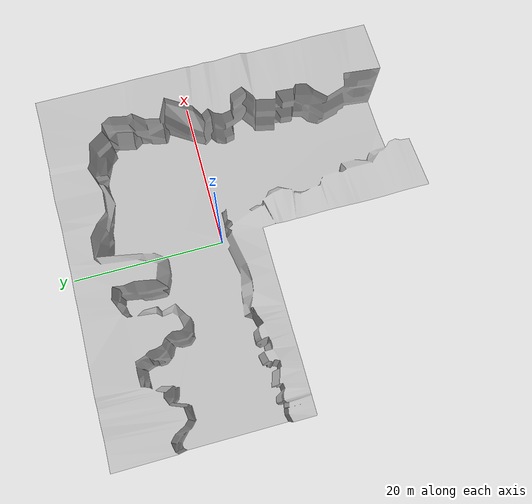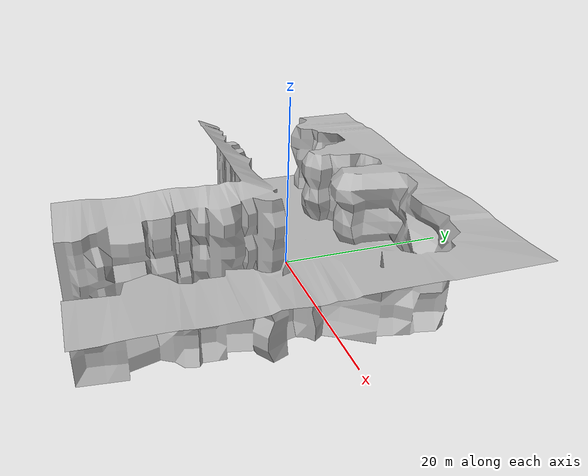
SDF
<?xml version="1.0" ?>
<sdf version="1.5">
  <model name="buoy_a5">
    <static>true</static>
    <link name="link">
      <pose>0 0 0 0 0 0</pose>
      <collision name="collision">
        <geometry>
          <mesh>
            <uri>model://rock_wall/meshes/rock_wall.dae</uri>
          </mesh>
        </geometry>
      </collision>
      <visual name="visual">
        <cast_shadows>false</cast_shadows>
        <geometry>
          <mesh>
            <uri>model://rock_wall/meshes/rock_wall.dae</uri>
          </mesh>
        </geometry>
      </visual>
      <inertial>
      	<origin
        xyz="0 0 0"
        rpy="0 0 0" />
        <mass>10</mass>
        <inertia>
          <ixx>10</ixx>
          <ixy>0</ixy>
          <ixz>0</ixz>
          <iyy>10</iyy>
          <iyz>0</iyz>
          <izz>10</izz>
        </inertia>
      </inertial>
    </link>
  </model>
</sdf>
